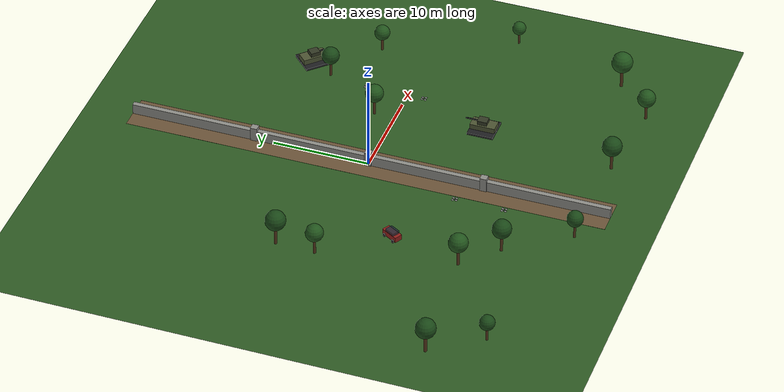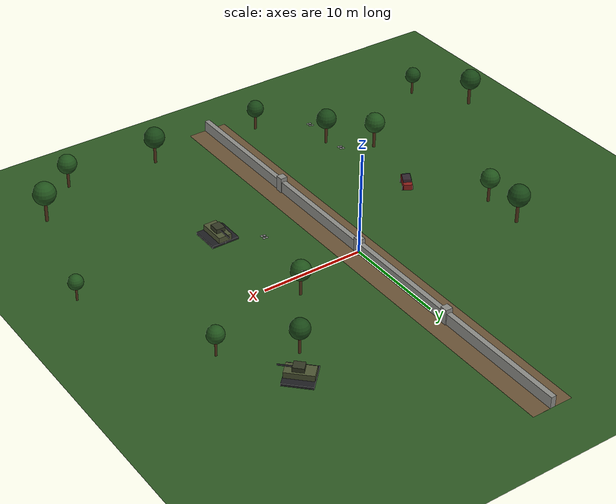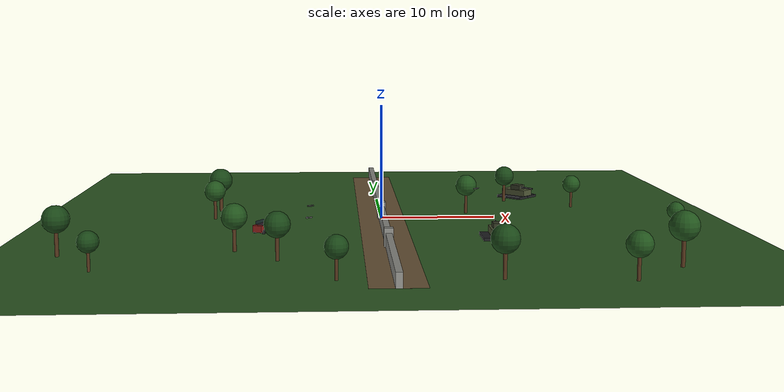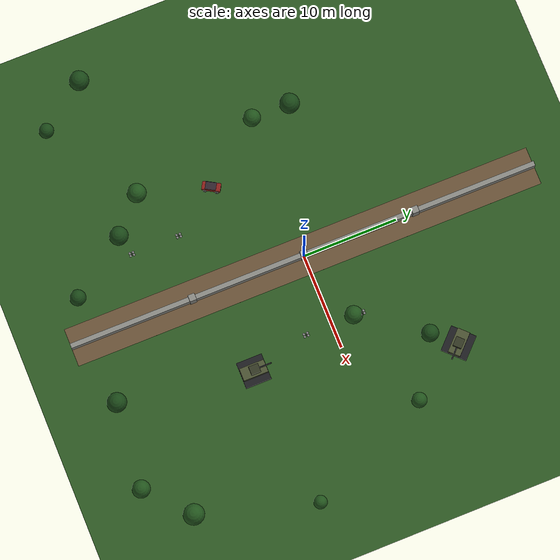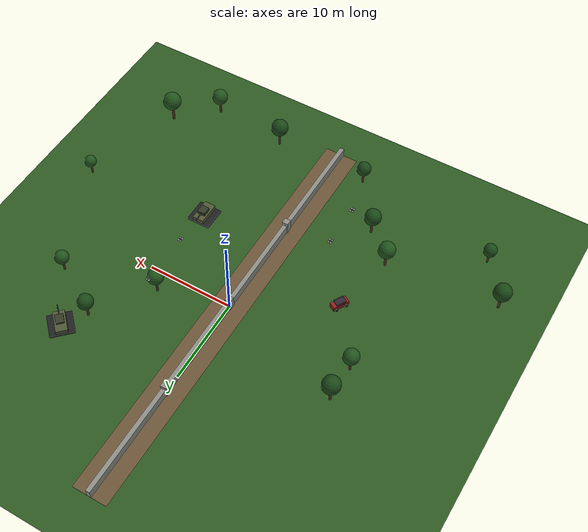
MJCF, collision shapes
<mujoco model="UAV-IDS Battlefield Scene (Skydio X2 x2 + static scenery)">

  <compiler autolimits="true" assetdir="assets"/>
  <option timestep="0.01" density="1.225" viscosity="1.8e-5"/>

  <default>
    <default class="x2">
      <geom mass="0"/>
      <motor ctrlrange="0 13"/>
      <mesh scale="0.01 0.01 0.01"/>
      <default class="visual">
        <geom group="2" type="mesh" contype="0" conaffinity="0"/>
      </default>
      <default class="collision">
        <geom group="3" type="box"/>
        <default class="rotor">
          <geom type="ellipsoid" size=".13 .13 .01"/>
        </default>
      </default>
      <site group="5"/>
    </default>
    <default class="scenery">
      <geom contype="0" conaffinity="0" group="1"/>
    </default>
    <default class="tree">
      <geom contype="0" conaffinity="0" group="1"/>
    </default>
  </default>

  <asset>
    <texture type="2d" file="X2_lowpoly_texture_SpinningProps_1024.png"/>
    <material name="phong3SG" texture="X2_lowpoly_texture_SpinningProps_1024"/>
    <material name="invisible" rgba="0 0 0 0"/>
    <mesh class="x2" file="X2_lowpoly.obj"/>

    <texture type="skybox" builtin="gradient" rgb1="0.45 0.6 0.75" rgb2="0.05 0.05 0.1" width="512" height="3072"/>

    <!-- grass battlefield ground -->
    <texture type="2d" name="grass" builtin="checker" mark="none" rgb1="0.16 0.32 0.12" rgb2="0.20 0.38 0.15"
      width="300" height="300"/>
    <material name="grass" texture="grass" texuniform="true" texrepeat="40 40" reflectance="0.05" shininess="0.02"/>

    <!-- no-man's-land dirt stripe along the border -->
    <texture type="2d" name="dirt" builtin="flat" rgb1="0.42 0.33 0.22" width="64" height="64"/>
    <material name="dirt" texture="dirt" texuniform="true" texrepeat="6 40" reflectance="0.02"/>

    <material name="concrete" rgba="0.55 0.55 0.53 1"/>
    <material name="olive" rgba="0.30 0.33 0.20 1"/>
    <material name="olive_dark" rgba="0.20 0.22 0.14 1"/>
    <material name="gunmetal" rgba="0.12 0.12 0.13 1"/>
    <material name="car_body" rgba="0.55 0.12 0.10 1"/>
    <material name="car_glass" rgba="0.15 0.20 0.25 0.8"/>
    <material name="tire" rgba="0.05 0.05 0.05 1"/>
    <material name="tree_trunk" rgba="0.32 0.20 0.10 1"/>
    <material name="tree_leaves" rgba="0.10 0.28 0.09 1"/>
    <material name="tree_leaves2" rgba="0.13 0.33 0.11 1"/>
  </asset>

  <visual>
    <headlight diffuse="0.7 0.7 0.65" ambient="0.35 0.35 0.32" specular="0.1 0.1 0.1"/>
    <rgba haze="0.35 0.42 0.35 1"/>
    <global azimuth="-35" elevation="-25" ellipsoidinertia="true" offwidth="1280" offheight="720"/>
    <quality shadowsize="4096"/>
  </visual>

  <worldbody>
    <light pos="-10 -10 15" dir="0.5 0.5 -1" directional="true" diffuse="0.7 0.7 0.65"/>
    <light pos="10 10 15" dir="-0.5 -0.5 -1" directional="true" diffuse="0.4 0.4 0.4"/>

    <!-- large grass battlefield, 60m x 60m -->
    <geom name="floor" size="30 30 0.05" type="plane" material="grass"/>
    <!-- no-man's-land stripe marking the border, x in [-2,2] -->
    <geom name="border_stripe" type="box" size="2 25 0.001" pos="0 0 0.002" material="dirt"
          contype="0" conaffinity="0"/>
    <!-- the border line itself: a low concrete wall, welded to the world (static) -->
    <geom name="border_wall" class="scenery" type="box" size="0.25 25 0.55" pos="0 0 0.55" material="concrete"/>
    <!-- short wall posts for visual detail -->
    <geom name="border_post_1" class="scenery" type="box" size="0.35 0.35 0.75" pos="0 -12 0.75" material="concrete"/>
    <geom name="border_post_2" class="scenery" type="box" size="0.35 0.35 0.75" pos="0 0 0.75" material="concrete"/>
    <geom name="border_post_3" class="scenery" type="box" size="0.35 0.35 0.75" pos="0 12 0.75" material="concrete"/>

    <!-- ============ STATIC SCENERY: 2 tanks in enemy territory (x>0) ============ -->
    <body name="tank_1" pos="9 -9 0">
      <geom class="scenery" type="box" size=".65 1.3 .40" pos="0 0 .40" material="olive"/>
      <geom class="scenery" type="box" size=".45 .5 .28" pos="0 .1 .95" material="olive_dark"/>
      <geom class="scenery" type="cylinder" size=".07 .75" pos="0 1.15 1.0" quat="0.7071 0.7071 0 0" material="gunmetal"/>
      <geom class="scenery" type="box" size=".68 1.35 .12" pos="-.68 0 .12" material="gunmetal"/>
      <geom class="scenery" type="box" size=".68 1.35 .12" pos=".68 0 .12" material="gunmetal"/>
    </body>

    <body name="tank_2" pos="14 11 0" quat="0.92388 0 0 0.38268">
      <geom class="scenery" type="box" size=".65 1.3 .40" pos="0 0 .40" material="olive"/>
      <geom class="scenery" type="box" size=".45 .5 .28" pos="0 -.1 .95" material="olive_dark"/>
      <geom class="scenery" type="cylinder" size=".07 .75" pos="0 -1.15 1.0" quat="0.7071 0.7071 0 0" material="gunmetal"/>
      <geom class="scenery" type="box" size=".68 1.35 .12" pos="-.68 0 .12" material="gunmetal"/>
      <geom class="scenery" type="box" size=".68 1.35 .12" pos=".68 0 .12" material="gunmetal"/>
    </body>

    <!-- ============ STATIC SCENERY: 1 car in friendly territory (x<0) ============ -->
    <body name="car_1" pos="-10 -6 0" quat="0.8660 0 0 0.5">
      <geom class="scenery" type="box" size=".95 .42 .28" pos="0 0 .43" material="car_body"/>
      <geom class="scenery" type="box" size=".55 .38 .22" pos="-.05 0 .78" material="car_glass"/>
      <geom class="scenery" type="cylinder" size=".18 .10" pos=".62 .42 .18" quat="0.7071 0.7071 0 0" material="tire"/>
      <geom class="scenery" type="cylinder" size=".18 .10" pos=".62 -.42 .18" quat="0.7071 0.7071 0 0" material="tire"/>
      <geom class="scenery" type="cylinder" size=".18 .10" pos="-.62 .42 .18" quat="0.7071 0.7071 0 0" material="tire"/>
      <geom class="scenery" type="cylinder" size=".18 .10" pos="-.62 -.42 .18" quat="0.7071 0.7071 0 0" material="tire"/>
    </body>

    <!-- ============ STATIC SCENERY: trees ============ -->
    <body name="tree_1" pos="7.25 -22.8 0">
      <geom class="tree" type="cylinder" size="0.14 1.08" pos="0 0 1.08" material="tree_trunk"/>
      <geom class="tree" type="sphere" size="1.02" pos="0 0 2.77" material="tree_leaves"/>
    </body>
    <body name="tree_2" pos="-11.7 -13.29 0">
      <geom class="tree" type="cylinder" size="0.14 1.05" pos="0 0 1.05" material="tree_trunk"/>
      <geom class="tree" type="sphere" size="0.99" pos="0 0 2.69" material="tree_leaves2"/>
    </body>
    <body name="tree_3" pos="12.3 8.48 0">
      <geom class="tree" type="cylinder" size="0.13 0.96" pos="0 0 0.96" material="tree_trunk"/>
      <geom class="tree" type="sphere" size="0.91" pos="0 0 2.47" material="tree_leaves"/>
    </body>
    <body name="tree_4" pos="20.39 -19.83 0">
      <geom class="tree" type="cylinder" size="0.15 1.16" pos="0 0 1.16" material="tree_trunk"/>
      <geom class="tree" type="sphere" size="1.09" pos="0 0 2.97" material="tree_leaves2"/>
    </body>
    <body name="tree_5" pos="-4.06 -22.57 0">
      <geom class="tree" type="cylinder" size="0.12 0.89" pos="0 0 0.89" material="tree_trunk"/>
      <geom class="tree" type="sphere" size="0.84" pos="0 0 2.28" material="tree_leaves"/>
    </body>
    <body name="tree_6" pos="-14.63 0.26 0">
      <geom class="tree" type="cylinder" size="0.13 0.97" pos="0 0 0.97" material="tree_trunk"/>
      <geom class="tree" type="sphere" size="0.91" pos="0 0 2.49" material="tree_leaves2"/>
    </body>
    <body name="tree_7" pos="-24.62 -14.46 0">
      <geom class="tree" type="cylinder" size="0.15 1.09" pos="0 0 1.09" material="tree_trunk"/>
      <geom class="tree" type="sphere" size="1.03" pos="0 0 2.8" material="tree_leaves"/>
    </body>
    <body name="tree_8" pos="7.79 2.16 0">
      <geom class="tree" type="cylinder" size="0.13 1.0" pos="0 0 1.0" material="tree_trunk"/>
      <geom class="tree" type="sphere" size="0.94" pos="0 0 2.56" material="tree_leaves2"/>
    </body>
    <body name="tree_9" pos="-14.54 4.28 0">
      <geom class="tree" type="cylinder" size="0.15 1.11" pos="0 0 1.11" material="tree_trunk"/>
      <geom class="tree" type="sphere" size="1.05" pos="0 0 2.85" material="tree_leaves"/>
    </body>
    <body name="tree_10" pos="16.09 -23.69 0">
      <geom class="tree" type="cylinder" size="0.13 0.98" pos="0 0 0.98" material="tree_trunk"/>
      <geom class="tree" type="sphere" size="0.93" pos="0 0 2.52" material="tree_leaves2"/>
    </body>
    <body name="tree_11" pos="-8.31 -16.54 0">
      <geom class="tree" type="cylinder" size="0.14 1.04" pos="0 0 1.04" material="tree_trunk"/>
      <geom class="tree" type="sphere" size="0.98" pos="0 0 2.67" material="tree_leaves"/>
    </body>
    <body name="tree_12" pos="23.78 -7.84 0">
      <geom class="tree" type="cylinder" size="0.1 0.74" pos="0 0 0.74" material="tree_trunk"/>
      <geom class="tree" type="sphere" size="0.7" pos="0 0 1.9" material="tree_leaves2"/>
    </body>
    <body name="tree_13" pos="-21.18 -19.36 0">
      <geom class="tree" type="cylinder" size="0.11 0.82" pos="0 0 0.82" material="tree_trunk"/>
      <geom class="tree" type="sphere" size="0.78" pos="0 0 2.11" material="tree_leaves"/>
    </body>
    <body name="tree_14" pos="18.07 4.98 0">
      <geom class="tree" type="cylinder" size="0.11 0.85" pos="0 0 0.85" material="tree_trunk"/>
      <geom class="tree" type="sphere" size="0.8" pos="0 0 2.18" material="tree_leaves2"/>
    </body>
    <body name="a1" pos="8 -3 3.0" childclass="x2">
      <freejoint/>
      <camera name="a1_track" pos="-1 0 .5" xyaxes="0 -1 0 1 0 2" mode="trackcom"/>
      <site name="a1_imu" pos="0 0 .02"/>
      <site name="a1_gnss" pos="0 0 .03"/>
      <geom material="phong3SG" mesh="X2_lowpoly" class="visual" quat="0 0 1 1" rgba="1 0.35 0.35 1"/>
      <geom class="collision" size=".06 .027 .02" pos=".04 0 .02"/>
      <geom class="collision" size=".06 .027 .02" pos=".04 0 .06"/>
      <geom class="collision" size=".05 .027 .02" pos="-.07 0 .065"/>
      <geom class="collision" size=".023 .017 .01" pos="-.137 .008 .065" quat="1 0 0 1"/>
      <geom name="a1_rotor1" class="rotor" pos="-.14 -.18 .05" mass=".25"/>
      <geom name="a1_rotor2" class="rotor" pos="-.14 .18 .05" mass=".25"/>
      <geom name="a1_rotor3" class="rotor" pos=".14 .18 .08" mass=".25"/>
      <geom name="a1_rotor4" class="rotor" pos=".14 -.18 .08" mass=".25"/>
      <geom size=".16 .04 .02" pos="0 0 0.02" type="ellipsoid" mass=".325" class="visual" material="invisible"/>
      <site name="a1_thrust1" pos="-.14 -.18 .05"/>
      <site name="a1_thrust2" pos="-.14 .18 .05"/>
      <site name="a1_thrust3" pos=".14 .18 .08"/>
      <site name="a1_thrust4" pos=".14 -.18 .08"/>
    </body>

    <body name="a2" pos="8 3 3.0" childclass="x2">
      <freejoint/>
      <camera name="a2_track" pos="-1 0 .5" xyaxes="0 -1 0 1 0 2" mode="trackcom"/>
      <site name="a2_imu" pos="0 0 .02"/>
      <site name="a2_gnss" pos="0 0 .03"/>
      <geom material="phong3SG" mesh="X2_lowpoly" class="visual" quat="0 0 1 1" rgba="1 0.6 0.2 1"/>
      <geom class="collision" size=".06 .027 .02" pos=".04 0 .02"/>
      <geom class="collision" size=".06 .027 .02" pos=".04 0 .06"/>
      <geom class="collision" size=".05 .027 .02" pos="-.07 0 .065"/>
      <geom class="collision" size=".023 .017 .01" pos="-.137 .008 .065" quat="1 0 0 1"/>
      <geom name="a2_rotor1" class="rotor" pos="-.14 -.18 .05" mass=".25"/>
      <geom name="a2_rotor2" class="rotor" pos="-.14 .18 .05" mass=".25"/>
      <geom name="a2_rotor3" class="rotor" pos=".14 .18 .08" mass=".25"/>
      <geom name="a2_rotor4" class="rotor" pos=".14 -.18 .08" mass=".25"/>
      <geom size=".16 .04 .02" pos="0 0 0.02" type="ellipsoid" mass=".325" class="visual" material="invisible"/>
      <site name="a2_thrust1" pos="-.14 -.18 .05"/>
      <site name="a2_thrust2" pos="-.14 .18 .05"/>
      <site name="a2_thrust3" pos=".14 .18 .08"/>
      <site name="a2_thrust4" pos=".14 -.18 .08"/>
    </body>

    <body name="b1" pos="-6 -16 3.0" childclass="x2">
      <freejoint/>
      <camera name="b1_track" pos="-1 0 .5" xyaxes="0 -1 0 1 0 2" mode="trackcom"/>
      <site name="b1_imu" pos="0 0 .02"/>
      <site name="b1_gnss" pos="0 0 .03"/>
      <geom material="phong3SG" mesh="X2_lowpoly" class="visual" quat="0 0 1 1" rgba="0.3 0.5 1 1"/>
      <geom class="collision" size=".06 .027 .02" pos=".04 0 .02"/>
      <geom class="collision" size=".06 .027 .02" pos=".04 0 .06"/>
      <geom class="collision" size=".05 .027 .02" pos="-.07 0 .065"/>
      <geom class="collision" size=".023 .017 .01" pos="-.137 .008 .065" quat="1 0 0 1"/>
      <geom name="b1_rotor1" class="rotor" pos="-.14 -.18 .05" mass=".25"/>
      <geom name="b1_rotor2" class="rotor" pos="-.14 .18 .05" mass=".25"/>
      <geom name="b1_rotor3" class="rotor" pos=".14 .18 .08" mass=".25"/>
      <geom name="b1_rotor4" class="rotor" pos=".14 -.18 .08" mass=".25"/>
      <geom size=".16 .04 .02" pos="0 0 0.02" type="ellipsoid" mass=".325" class="visual" material="invisible"/>
      <site name="b1_thrust1" pos="-.14 -.18 .05"/>
      <site name="b1_thrust2" pos="-.14 .18 .05"/>
      <site name="b1_thrust3" pos=".14 .18 .08"/>
      <site name="b1_thrust4" pos=".14 -.18 .08"/>
    </body>

    <body name="b2" pos="-6 -11 3.0" childclass="x2">
      <freejoint/>
      <camera name="b2_track" pos="-1 0 .5" xyaxes="0 -1 0 1 0 2" mode="trackcom"/>
      <site name="b2_imu" pos="0 0 .02"/>
      <site name="b2_gnss" pos="0 0 .03"/>
      <geom material="phong3SG" mesh="X2_lowpoly" class="visual" quat="0 0 1 1" rgba="0.3 0.9 0.9 1"/>
      <geom class="collision" size=".06 .027 .02" pos=".04 0 .02"/>
      <geom class="collision" size=".06 .027 .02" pos=".04 0 .06"/>
      <geom class="collision" size=".05 .027 .02" pos="-.07 0 .065"/>
      <geom class="collision" size=".023 .017 .01" pos="-.137 .008 .065" quat="1 0 0 1"/>
      <geom name="b2_rotor1" class="rotor" pos="-.14 -.18 .05" mass=".25"/>
      <geom name="b2_rotor2" class="rotor" pos="-.14 .18 .05" mass=".25"/>
      <geom name="b2_rotor3" class="rotor" pos=".14 .18 .08" mass=".25"/>
      <geom name="b2_rotor4" class="rotor" pos=".14 -.18 .08" mass=".25"/>
      <geom size=".16 .04 .02" pos="0 0 0.02" type="ellipsoid" mass=".325" class="visual" material="invisible"/>
      <site name="b2_thrust1" pos="-.14 -.18 .05"/>
      <site name="b2_thrust2" pos="-.14 .18 .05"/>
      <site name="b2_thrust3" pos=".14 .18 .08"/>
      <site name="b2_thrust4" pos=".14 -.18 .08"/>
    </body>

  </worldbody>

  <actuator>
    <motor class="x2" name="a1_thrust1" site="a1_thrust1" gear="0 0 1 0 0 -.0201"/>
    <motor class="x2" name="a1_thrust2" site="a1_thrust2" gear="0 0 1 0 0 .0201"/>
    <motor class="x2" name="a1_thrust3" site="a1_thrust3" gear="0 0 1 0 0 -.0201"/>
    <motor class="x2" name="a1_thrust4" site="a1_thrust4" gear="0 0 1 0 0 .0201"/>

    <motor class="x2" name="a2_thrust1" site="a2_thrust1" gear="0 0 1 0 0 -.0201"/>
    <motor class="x2" name="a2_thrust2" site="a2_thrust2" gear="0 0 1 0 0 .0201"/>
    <motor class="x2" name="a2_thrust3" site="a2_thrust3" gear="0 0 1 0 0 -.0201"/>
    <motor class="x2" name="a2_thrust4" site="a2_thrust4" gear="0 0 1 0 0 .0201"/>

    <motor class="x2" name="b1_thrust1" site="b1_thrust1" gear="0 0 1 0 0 -.0201"/>
    <motor class="x2" name="b1_thrust2" site="b1_thrust2" gear="0 0 1 0 0 .0201"/>
    <motor class="x2" name="b1_thrust3" site="b1_thrust3" gear="0 0 1 0 0 -.0201"/>
    <motor class="x2" name="b1_thrust4" site="b1_thrust4" gear="0 0 1 0 0 .0201"/>

    <motor class="x2" name="b2_thrust1" site="b2_thrust1" gear="0 0 1 0 0 -.0201"/>
    <motor class="x2" name="b2_thrust2" site="b2_thrust2" gear="0 0 1 0 0 .0201"/>
    <motor class="x2" name="b2_thrust3" site="b2_thrust3" gear="0 0 1 0 0 -.0201"/>
    <motor class="x2" name="b2_thrust4" site="b2_thrust4" gear="0 0 1 0 0 .0201"/>
  </actuator>

  <sensor>
    <gyro name="a1_gyro" site="a1_imu"/>
    <accelerometer name="a1_accel" site="a1_imu"/>
    <magnetometer name="a1_mag" site="a1_imu"/>
    <framepos name="a1_gps_pos" objtype="site" objname="a1_gnss"/>
    <framequat name="a1_att_quat" objtype="site" objname="a1_imu"/>
    <actuatorfrc name="a1_frc1" actuator="a1_thrust1"/>
    <actuatorfrc name="a1_frc2" actuator="a1_thrust2"/>
    <actuatorfrc name="a1_frc3" actuator="a1_thrust3"/>
    <actuatorfrc name="a1_frc4" actuator="a1_thrust4"/>
    <framepos name="a2_gps_pos" objtype="site" objname="a2_gnss"/>
    <framequat name="a2_att_quat" objtype="site" objname="a2_imu"/>
    <gyro name="b1_gyro" site="b1_imu"/>
    <accelerometer name="b1_accel" site="b1_imu"/>
    <magnetometer name="b1_mag" site="b1_imu"/>
    <framepos name="b1_gps_pos" objtype="site" objname="b1_gnss"/>
    <framequat name="b1_att_quat" objtype="site" objname="b1_imu"/>
    <actuatorfrc name="b1_frc1" actuator="b1_thrust1"/>
    <actuatorfrc name="b1_frc2" actuator="b1_thrust2"/>
    <actuatorfrc name="b1_frc3" actuator="b1_thrust3"/>
    <actuatorfrc name="b1_frc4" actuator="b1_thrust4"/>
    <framepos name="b2_gps_pos" objtype="site" objname="b2_gnss"/>
    <framequat name="b2_att_quat" objtype="site" objname="b2_imu"/>
  </sensor>

  <keyframe>
    <key name="hover" qpos="8 -3 3.0 1 0 0 0 8 3 3.0 1 0 0 0 -6 -16 3.0 1 0 0 0 -6 -11 3.0 1 0 0 0"
         ctrl="3.2495625 3.2495625 3.2495625 3.2495625 3.2495625 3.2495625 3.2495625 3.2495625 3.2495625 3.2495625 3.2495625 3.2495625 3.2495625 3.2495625 3.2495625 3.2495625"/>
  </keyframe>
</mujoco>
